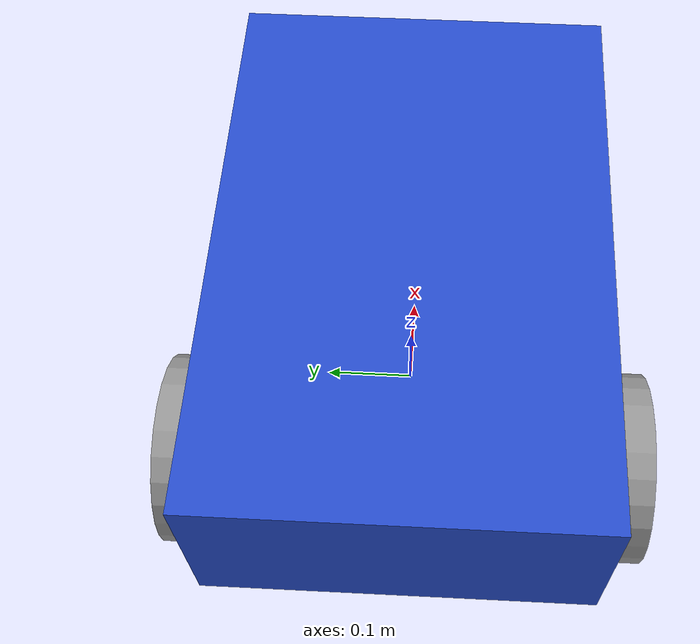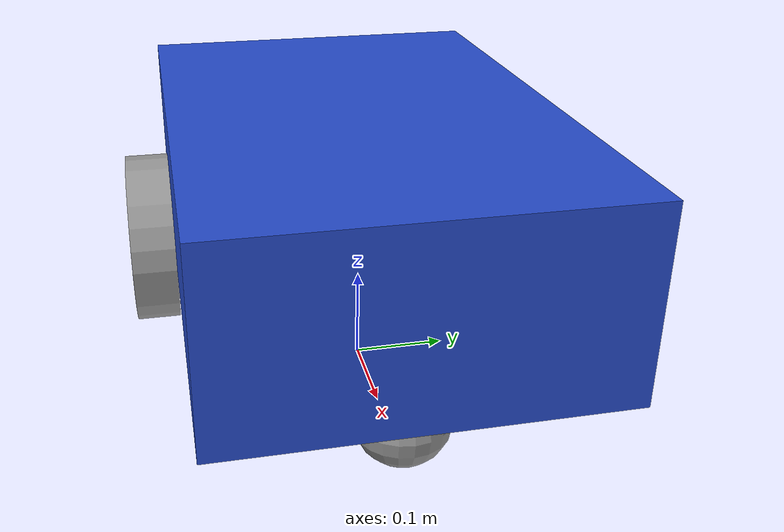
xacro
<?xml version="1.0"?>
<robot xmlns:xacro="http://www.ros.org/wiki/xacro">

    <!--Dimensions-->
    <xacro:property name="base_length" value="0.6" />
    <xacro:property name="base_width" value="0.4" />
    <xacro:property name="base_height" value="0.2" />
    <xacro:property name="wheel_radius" value="0.1" />
    <xacro:property name="wheel_length" value="0.05" />

    <!--Masses-->
    <xacro:property name="base_mass" value="5.0" />
    <xacro:property name="wheel_mass" value="0.5" />
    <xacro:property name="caster_mass" value="0.2" />

    <!--Inertia-->
    <xacro:macro name="inertial_box" params="mass x y z">
        <inertial>
            <mass value="${mass}" />
            <origin xyz="0 0 ${z/2.0}" rpy="0 0 0"/>
            <inertia
                ixx="${(1.0/12.0) * mass * (y*y + z*z)}"
                iyy="${(1.0/12.0) * mass * (x*x + z*z)}"
                izz="${(1.0/12.0) * mass * (x*x + y*y)}"
                ixy="0.0" ixz="0.0" iyz="0.0" />
        </inertial>
    </xacro:macro>

    <xacro:macro name="inertial_cylinder" params="mass radius length">
        <inertial>
            <mass value="${mass}" />
            <origin xyz="0 0 0" rpy="${pi/2.0} 0 0"/>
            <inertia
                ixx="${(1.0/12.0)*mass*(3*radius*radius + length*length)}"
                iyy="${(1.0/2.0)*mass*radius*radius}"
                izz="${(1.0/12.0)*mass*(3*radius*radius + length*length)}"
                ixy="0.0" ixz="0.0" iyz="0.0" />
        </inertial>
    </xacro:macro>

    <xacro:macro name="inertial_sphere" params="mass radius">
        <inertial>
            <mass value="${mass}" />
            <origin xyz="0 0 0" rpy="0 0 0"/>
            <inertia
                ixx="${(2.0/5.0)*mass*radius*radius}"
                iyy="${(2.0/5.0)*mass*radius*radius}"
                izz="${(2.0/5.0)*mass*radius*radius}"
                ixy="0.0" ixz="0.0" iyz="0.0" />
        </inertial>
    </xacro:macro>

    <!--Links-->
    <link name="base_footprint" />

    <link name="base_link">
        <visual>
            <geometry>
                <box size="${base_length} ${base_width} ${base_height}" />
            </geometry>
            <origin xyz="0 0 ${base_height / 2.0}" rpy="0 0 0" />
            <material name="blue" />
        </visual>

        <collision>
            <geometry>
                <box size="${base_length} ${base_width} ${base_height}" />
            </geometry>
            <origin xyz="0 0 ${base_height / 2.0}" rpy="0 0 0" />
        </collision>

        <xacro:inertial_box mass="${base_mass}" x="${base_length}" y="${base_width}" z="${base_height}" />
    </link>

    <xacro:macro name="wheel_link" params="prefix">
        <link name="${prefix}_wheel_link">
            <visual>
                <geometry>
                    <cylinder radius="${wheel_radius}" length="${wheel_length}" />
                </geometry>
                <origin xyz="0 0 0" rpy="${pi / 2.0} 0 0" />
                <material name="grey" />
            </visual>

            <collision>
                <geometry>
                    <cylinder radius="${wheel_radius}" length="${wheel_length}" />
                </geometry>
                <origin xyz="0 0 0" rpy="${pi / 2.0} 0 0" />
            </collision>

            <xacro:inertial_cylinder mass="${wheel_mass}" radius="${wheel_radius}" length="${wheel_length}" />
        </link>
    </xacro:macro>

    <xacro:wheel_link prefix="right" />
    <xacro:wheel_link prefix="left" />

    <link name="caster_wheel_link">
        <visual>
            <geometry>
                <sphere radius="${wheel_radius / 2.0}" />
            </geometry>
            <origin xyz="0 0 0" rpy="0 0 0" />
            <material name="grey" />
        </visual>

         <visual>
            <geometry>
                <sphere radius="${wheel_radius / 2.0}" />
            </geometry>
            <origin xyz="0 0 0" rpy="0 0 0" />
        </visual>

        <xacro:inertial_sphere mass="${caster_mass}" radius="${wheel_radius / 2.0}" />
    </link>

    <!--Joints-->
    <joint name="base_joint" type="fixed">
        <parent link="base_footprint" />
        <child link="base_link" />
        <origin xyz="0 0 ${wheel_radius}" rpy="0 0 0"/>
    </joint>

    <joint name="base_right_wheel_joint" type="continuous">
        <parent link="base_link" />
        <child link="right_wheel_link" />
        <origin xyz="${-base_length / 4.0} ${-(base_width + wheel_length) / 2.0} 0" rpy="0 0 0" />
        <axis xyz="0 1 0" />
    </joint>

    <joint name="base_left_wheel_joint" type="continuous">
        <parent link="base_link" />
        <child link="left_wheel_link" />
        <origin xyz="${-base_length / 4.0} ${(base_width + wheel_length) / 2.0} 0" rpy="0 0 0" />
        <axis xyz="0 1 0" />
    </joint>

    <joint name="base_caster_wheel_joint" type="fixed">
        <parent link="base_link" />
        <child link="caster_wheel_link" />
        <origin xyz="${base_length / 3.0} 0 ${-wheel_radius / 2.0}" rpy="0 0 0" />
    </joint>

</robot>
